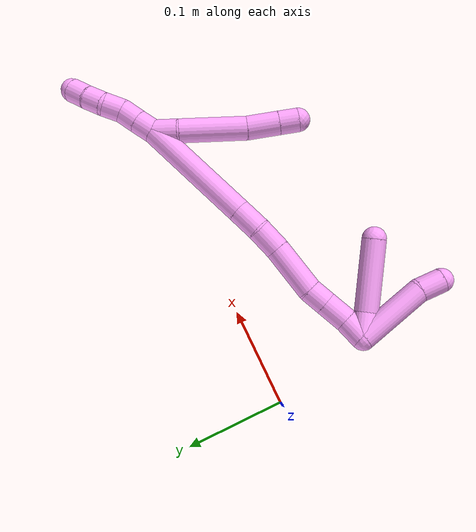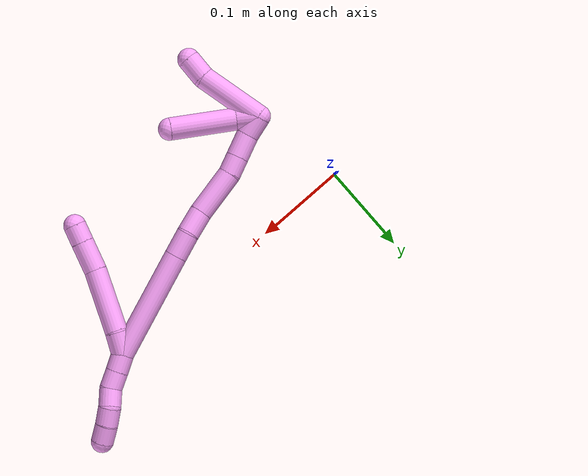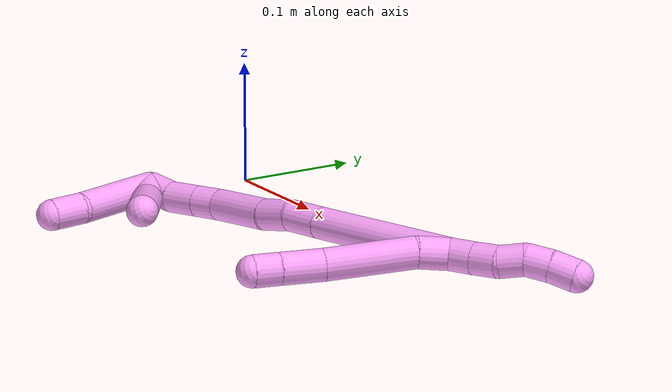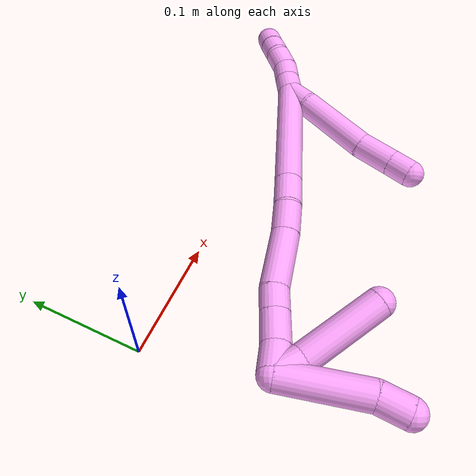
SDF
<sdf version="1.7">
 <world name="default">
  <model name="4">
   <static>0</static>
   <link name="4">
    <collision name="collision-cylinder-e_1_2_8">
     <pose>-0.005936 -0.008207 0.007788 0.811597 -0.483171 -0.210941</pose>
     <geometry><cylinder><radius>0.0125</radius><length>0.025554</length></cylinder></geometry>
     <surface>
      <friction><ode><mu>1.16</mu><mu2>1.16</mu2><slip1>0</slip1><slip2>0</slip2></ode></friction>
      <contact><ode><kp>1e+06</kp><kd>1</kd><max_vel>0</max_vel><min_depth>0.001</min_depth></ode></contact>
     </surface>
    </collision>
    <visual name="visual-cylinder-e_1_2_8">
     <pose>-0.005936 -0.008207 0.007788 0.811597 -0.483171 -0.210941</pose>
     <geometry><cylinder><radius>0.0125</radius><length>0.025554</length></cylinder></geometry>
     <material><ambient>1 0.65098 0.996078 1</ambient></material>
    </visual>
    <collision name="collision-cylinder-e_2_8_9">
     <pose>-0.0319 -0.033886 0.03866 0.647897 -0.605215 -0.208894</pose>
     <geometry><cylinder><radius>0.0125</radius><length>0.070404</length></cylinder></geometry>
     <surface>
      <friction><ode><mu>1.16</mu><mu2>1.16</mu2><slip1>0</slip1><slip2>0</slip2></ode></friction>
      <contact><ode><kp>1e+06</kp><kd>1</kd><max_vel>0</max_vel><min_depth>0.001</min_depth></ode></contact>
     </surface>
    </collision>
    <visual name="visual-cylinder-e_2_8_9">
     <pose>-0.0319 -0.033886 0.03866 0.647897 -0.605215 -0.208894</pose>
     <geometry><cylinder><radius>0.0125</radius><length>0.070404</length></cylinder></geometry>
     <material><ambient>1 0.65098 0.996078 1</ambient></material>
    </visual>
    <collision name="collision-cylinder-e_3_9_10">
     <pose>-0.062367 -0.06069 0.071111 0.783504 -0.668276 -0.28488</pose>
     <geometry><cylinder><radius>0.0125</radius><length>0.033695</length></cylinder></geometry>
     <surface>
      <friction><ode><mu>1.16</mu><mu2>1.16</mu2><slip1>0</slip1><slip2>0</slip2></ode></friction>
      <contact><ode><kp>1e+06</kp><kd>1</kd><max_vel>0</max_vel><min_depth>0.001</min_depth></ode></contact>
     </surface>
    </collision>
    <visual name="visual-cylinder-e_3_9_10">
     <pose>-0.062367 -0.06069 0.071111 0.783504 -0.668276 -0.28488</pose>
     <geometry><cylinder><radius>0.0125</radius><length>0.033695</length></cylinder></geometry>
     <material><ambient>1 0.65098 0.996078 1</ambient></material>
    </visual>
    <collision name="collision-cylinder-e_4_10_6">
     <pose>-0.079113 -0.075629 0.086162 0.77857 -0.668574 -0.283051</pose>
     <geometry><cylinder><radius>0.0125</radius><length>0.020346</length></cylinder></geometry>
     <surface>
      <friction><ode><mu>1.16</mu><mu2>1.16</mu2><slip1>0</slip1><slip2>0</slip2></ode></friction>
      <contact><ode><kp>1e+06</kp><kd>1</kd><max_vel>0</max_vel><min_depth>0.001</min_depth></ode></contact>
     </surface>
    </collision>
    <visual name="visual-cylinder-e_4_10_6">
     <pose>-0.079113 -0.075629 0.086162 0.77857 -0.668574 -0.283051</pose>
     <geometry><cylinder><radius>0.0125</radius><length>0.020346</length></cylinder></geometry>
     <material><ambient>1 0.65098 0.996078 1</ambient></material>
    </visual>
    <collision name="collision-cylinder-e_1_2_11">
     <pose>-0.000494 0.004959 -0.00867 -2.62204 -0.049377 0.185287</pose>
     <geometry><cylinder><radius>0.0125</radius><length>0.02</length></cylinder></geometry>
     <surface>
      <friction><ode><mu>1.16</mu><mu2>1.16</mu2><slip1>0</slip1><slip2>0</slip2></ode></friction>
      <contact><ode><kp>1e+06</kp><kd>1</kd><max_vel>0</max_vel><min_depth>0.001</min_depth></ode></contact>
     </surface>
    </collision>
    <visual name="visual-cylinder-e_1_2_11">
     <pose>-0.000494 0.004959 -0.00867 -2.62204 -0.049377 0.185287</pose>
     <geometry><cylinder><radius>0.0125</radius><length>0.02</length></cylinder></geometry>
     <material><ambient>1 0.65098 0.996078 1</ambient></material>
    </visual>
    <collision name="collision-cylinder-e_2_11_12">
     <pose>-0.001551 0.014519 -0.0262 -2.6626 -0.056402 0.230025</pose>
     <geometry><cylinder><radius>0.0125</radius><length>0.02</length></cylinder></geometry>
     <surface>
      <friction><ode><mu>1.16</mu><mu2>1.16</mu2><slip1>0</slip1><slip2>0</slip2></ode></friction>
      <contact><ode><kp>1e+06</kp><kd>1</kd><max_vel>0</max_vel><min_depth>0.001</min_depth></ode></contact>
     </surface>
    </collision>
    <visual name="visual-cylinder-e_2_11_12">
     <pose>-0.001551 0.014519 -0.0262 -2.6626 -0.056402 0.230025</pose>
     <geometry><cylinder><radius>0.0125</radius><length>0.02</length></cylinder></geometry>
     <material><ambient>1 0.65098 0.996078 1</ambient></material>
    </visual>
    <collision name="collision-cylinder-e_3_12_13">
     <pose>0.000537 0.023224 -0.043786 -2.70205 0.268417 -1.08736</pose>
     <geometry><cylinder><radius>0.0125</radius><length>0.02</length></cylinder></geometry>
     <surface>
      <friction><ode><mu>1.16</mu><mu2>1.16</mu2><slip1>0</slip1><slip2>0</slip2></ode></friction>
      <contact><ode><kp>1e+06</kp><kd>1</kd><max_vel>0</max_vel><min_depth>0.001</min_depth></ode></contact>
     </surface>
    </collision>
    <visual name="visual-cylinder-e_3_12_13">
     <pose>0.000537 0.023224 -0.043786 -2.70205 0.268417 -1.08736</pose>
     <geometry><cylinder><radius>0.0125</radius><length>0.02</length></cylinder></geometry>
     <material><ambient>1 0.65098 0.996078 1</ambient></material>
    </visual>
    <collision name="collision-cylinder-e_4_13_14">
     <pose>0.003554 0.033737 -0.060178 -2.44515 0.036478 -0.100414</pose>
     <geometry><cylinder><radius>0.0125</radius><length>0.02</length></cylinder></geometry>
     <surface>
      <friction><ode><mu>1.16</mu><mu2>1.16</mu2><slip1>0</slip1><slip2>0</slip2></ode></friction>
      <contact><ode><kp>1e+06</kp><kd>1</kd><max_vel>0</max_vel><min_depth>0.001</min_depth></ode></contact>
     </surface>
    </collision>
    <visual name="visual-cylinder-e_4_13_14">
     <pose>0.003554 0.033737 -0.060178 -2.44515 0.036478 -0.100414</pose>
     <geometry><cylinder><radius>0.0125</radius><length>0.02</length></cylinder></geometry>
     <material><ambient>1 0.65098 0.996078 1</ambient></material>
    </visual>
    <collision name="collision-cylinder-e_5_14_5">
     <pose>0.003297 0.047026 -0.075076 -2.38124 -0.062247 0.155504</pose>
     <geometry><cylinder><radius>0.0125</radius><length>0.02</length></cylinder></geometry>
     <surface>
      <friction><ode><mu>1.16</mu><mu2>1.16</mu2><slip1>0</slip1><slip2>0</slip2></ode></friction>
      <contact><ode><kp>1e+06</kp><kd>1</kd><max_vel>0</max_vel><min_depth>0.001</min_depth></ode></contact>
     </surface>
    </collision>
    <visual name="visual-cylinder-e_5_14_5">
     <pose>0.003297 0.047026 -0.075076 -2.38124 -0.062247 0.155504</pose>
     <geometry><cylinder><radius>0.0125</radius><length>0.02</length></cylinder></geometry>
     <material><ambient>1 0.65098 0.996078 1</ambient></material>
    </visual>
    <collision name="collision-cylinder-e_1_2_15">
     <pose>0.012645 -0.026267 0.053202 0.458611 0.209983 0.049183</pose>
     <geometry><cylinder><radius>0.0125</radius><length>0.121332</length></cylinder></geometry>
     <surface>
      <friction><ode><mu>1.16</mu><mu2>1.16</mu2><slip1>0</slip1><slip2>0</slip2></ode></friction>
      <contact><ode><kp>1e+06</kp><kd>1</kd><max_vel>0</max_vel><min_depth>0.001</min_depth></ode></contact>
     </surface>
    </collision>
    <visual name="visual-cylinder-e_1_2_15">
     <pose>0.012645 -0.026267 0.053202 0.458611 0.209983 0.049183</pose>
     <geometry><cylinder><radius>0.0125</radius><length>0.121332</length></cylinder></geometry>
     <material><ambient>1 0.65098 0.996078 1</ambient></material>
    </visual>
    <collision name="collision-cylinder-e_2_15_16">
     <pose>0.028288 -0.058603 0.118453 0.466611 0.218592 0.052141</pose>
     <geometry><cylinder><radius>0.0125</radius><length>0.027639</length></cylinder></geometry>
     <surface>
      <friction><ode><mu>1.16</mu><mu2>1.16</mu2><slip1>0</slip1><slip2>0</slip2></ode></friction>
      <contact><ode><kp>1e+06</kp><kd>1</kd><max_vel>0</max_vel><min_depth>0.001</min_depth></ode></contact>
     </surface>
    </collision>
    <visual name="visual-cylinder-e_2_15_16">
     <pose>0.028288 -0.058603 0.118453 0.466611 0.218592 0.052141</pose>
     <geometry><cylinder><radius>0.0125</radius><length>0.027639</length></cylinder></geometry>
     <material><ambient>1 0.65098 0.996078 1</ambient></material>
    </visual>
    <collision name="collision-cylinder-e_3_16_17">
     <pose>0.033783 -0.06823 0.143315 0.270851 0.185681 0.025372</pose>
     <geometry><cylinder><radius>0.0125</radius><length>0.027063</length></cylinder></geometry>
     <surface>
      <friction><ode><mu>1.16</mu><mu2>1.16</mu2><slip1>0</slip1><slip2>0</slip2></ode></friction>
      <contact><ode><kp>1e+06</kp><kd>1</kd><max_vel>0</max_vel><min_depth>0.001</min_depth></ode></contact>
     </surface>
    </collision>
    <visual name="visual-cylinder-e_3_16_17">
     <pose>0.033783 -0.06823 0.143315 0.270851 0.185681 0.025372</pose>
     <geometry><cylinder><radius>0.0125</radius><length>0.027063</length></cylinder></geometry>
     <material><ambient>1 0.65098 0.996078 1</ambient></material>
    </visual>
    <collision name="collision-cylinder-e_4_17_18">
     <pose>0.044531 -0.079897 0.179648 0.332023 0.320217 0.054103</pose>
     <geometry><cylinder><radius>0.0125</radius><length>0.052419</length></cylinder></geometry>
     <surface>
      <friction><ode><mu>1.16</mu><mu2>1.16</mu2><slip1>0</slip1><slip2>0</slip2></ode></friction>
      <contact><ode><kp>1e+06</kp><kd>1</kd><max_vel>0</max_vel><min_depth>0.001</min_depth></ode></contact>
     </surface>
    </collision>
    <visual name="visual-cylinder-e_4_17_18">
     <pose>0.044531 -0.079897 0.179648 0.332023 0.320217 0.054103</pose>
     <geometry><cylinder><radius>0.0125</radius><length>0.052419</length></cylinder></geometry>
     <material><ambient>1 0.65098 0.996078 1</ambient></material>
    </visual>
    <collision name="collision-cylinder-e_5_18_19">
     <pose>0.054211 -0.09235 0.212444 0.4379 0.138761 0.030924</pose>
     <geometry><cylinder><radius>0.0125</radius><length>0.020689</length></cylinder></geometry>
     <surface>
      <friction><ode><mu>1.16</mu><mu2>1.16</mu2><slip1>0</slip1><slip2>0</slip2></ode></friction>
      <contact><ode><kp>1e+06</kp><kd>1</kd><max_vel>0</max_vel><min_depth>0.001</min_depth></ode></contact>
     </surface>
    </collision>
    <visual name="visual-cylinder-e_5_18_19">
     <pose>0.054211 -0.09235 0.212444 0.4379 0.138761 0.030924</pose>
     <geometry><cylinder><radius>0.0125</radius><length>0.020689</length></cylinder></geometry>
     <material><ambient>1 0.65098 0.996078 1</ambient></material>
    </visual>
    <collision name="collision-cylinder-e_6_19_20">
     <pose>0.057481 -0.102346 0.233724 0.440138 0.137708 0.030851</pose>
     <geometry><cylinder><radius>0.0125</radius><length>0.026784</length></cylinder></geometry>
     <surface>
      <friction><ode><mu>1.16</mu><mu2>1.16</mu2><slip1>0</slip1><slip2>0</slip2></ode></friction>
      <contact><ode><kp>1e+06</kp><kd>1</kd><max_vel>0</max_vel><min_depth>0.001</min_depth></ode></contact>
     </surface>
    </collision>
    <visual name="visual-cylinder-e_6_19_20">
     <pose>0.057481 -0.102346 0.233724 0.440138 0.137708 0.030851</pose>
     <geometry><cylinder><radius>0.0125</radius><length>0.026784</length></cylinder></geometry>
     <material><ambient>1 0.65098 0.996078 1</ambient></material>
    </visual>
    <collision name="collision-cylinder-e_7_20_1">
     <pose>0.063125 -0.114021 0.255427 0.555535 0.321673 0.092455</pose>
     <geometry><cylinder><radius>0.0125</radius><length>0.024075</length></cylinder></geometry>
     <surface>
      <friction><ode><mu>1.16</mu><mu2>1.16</mu2><slip1>0</slip1><slip2>0</slip2></ode></friction>
      <contact><ode><kp>1e+06</kp><kd>1</kd><max_vel>0</max_vel><min_depth>0.001</min_depth></ode></contact>
     </surface>
    </collision>
    <visual name="visual-cylinder-e_7_20_1">
     <pose>0.063125 -0.114021 0.255427 0.555535 0.321673 0.092455</pose>
     <geometry><cylinder><radius>0.0125</radius><length>0.024075</length></cylinder></geometry>
     <material><ambient>1 0.65098 0.996078 1</ambient></material>
    </visual>
    <collision name="collision-cylinder-e_1_1_21">
     <pose>0.033499 -0.135267 0.270429 1.23585 -1.12153 -0.839684</pose>
     <geometry><cylinder><radius>0.0125</radius><length>0.074229</length></cylinder></geometry>
     <surface>
      <friction><ode><mu>1.16</mu><mu2>1.16</mu2><slip1>0</slip1><slip2>0</slip2></ode></friction>
      <contact><ode><kp>1e+06</kp><kd>1</kd><max_vel>0</max_vel><min_depth>0.001</min_depth></ode></contact>
     </surface>
    </collision>
    <visual name="visual-cylinder-e_1_1_21">
     <pose>0.033499 -0.135267 0.270429 1.23585 -1.12153 -0.839684</pose>
     <geometry><cylinder><radius>0.0125</radius><length>0.074229</length></cylinder></geometry>
     <material><ambient>1 0.65098 0.996078 1</ambient></material>
    </visual>
    <collision name="collision-cylinder-e_2_21_4">
     <pose>-0.010212 -0.156415 0.280754 0.867234 -0.923569 -0.452946</pose>
     <geometry><cylinder><radius>0.0125</radius><length>0.025771</length></cylinder></geometry>
     <surface>
      <friction><ode><mu>1.16</mu><mu2>1.16</mu2><slip1>0</slip1><slip2>0</slip2></ode></friction>
      <contact><ode><kp>1e+06</kp><kd>1</kd><max_vel>0</max_vel><min_depth>0.001</min_depth></ode></contact>
     </surface>
    </collision>
    <visual name="visual-cylinder-e_2_21_4">
     <pose>-0.010212 -0.156415 0.280754 0.867234 -0.923569 -0.452946</pose>
     <geometry><cylinder><radius>0.0125</radius><length>0.025771</length></cylinder></geometry>
     <material><ambient>1 0.65098 0.996078 1</ambient></material>
    </visual>
    <collision name="collision-cylinder-e_1_1_22">
     <pose>0.055305 -0.119928 0.259735 -3.12018 -1.13623 3.10805</pose>
     <geometry><cylinder><radius>0.0125</radius><length>0.025634</length></cylinder></geometry>
     <surface>
      <friction><ode><mu>1.16</mu><mu2>1.16</mu2><slip1>0</slip1><slip2>0</slip2></ode></friction>
      <contact><ode><kp>1e+06</kp><kd>1</kd><max_vel>0</max_vel><min_depth>0.001</min_depth></ode></contact>
     </surface>
    </collision>
    <visual name="visual-cylinder-e_1_1_22">
     <pose>0.055305 -0.119928 0.259735 -3.12018 -1.13623 3.10805</pose>
     <geometry><cylinder><radius>0.0125</radius><length>0.025634</length></cylinder></geometry>
     <material><ambient>1 0.65098 0.996078 1</ambient></material>
    </visual>
    <collision name="collision-cylinder-e_2_22_3">
     <pose>0.014348 -0.126695 0.232548 2.83567 -0.908909 -2.53027</pose>
     <geometry><cylinder><radius>0.0125</radius><length>0.074366</length></cylinder></geometry>
     <surface>
      <friction><ode><mu>1.16</mu><mu2>1.16</mu2><slip1>0</slip1><slip2>0</slip2></ode></friction>
      <contact><ode><kp>1e+06</kp><kd>1</kd><max_vel>0</max_vel><min_depth>0.001</min_depth></ode></contact>
     </surface>
    </collision>
    <visual name="visual-cylinder-e_2_22_3">
     <pose>0.014348 -0.126695 0.232548 2.83567 -0.908909 -2.53027</pose>
     <geometry><cylinder><radius>0.0125</radius><length>0.074366</length></cylinder></geometry>
     <material><ambient>1 0.65098 0.996078 1</ambient></material>
    </visual>
    <collision name="collision-sphere-3">
     <pose>-0.014983 -0.133578 0.210757 0 -0 0</pose>
     <geometry><sphere><radius>0.0125</radius></sphere></geometry>
     <surface>
      <friction><ode><mu>1.16</mu><mu2>1.16</mu2><slip1>0</slip1><slip2>0</slip2></ode></friction>
      <contact><ode><kp>1e+06</kp><kd>1</kd><max_vel>0</max_vel><min_depth>0.001</min_depth></ode></contact>
     </surface>
    </collision>
    <visual name="visual-sphere-3">
     <pose>-0.014983 -0.133578 0.210757 0 -0 0</pose>
     <geometry><sphere><radius>0.0125</radius></sphere></geometry>
     <material><ambient>1 0.65098 0.996078 1</ambient></material>
    </visual>
    <collision name="collision-sphere-22">
     <pose>0.043679 -0.119813 0.25434 0 -0 0</pose>
     <geometry><sphere><radius>0.0125</radius></sphere></geometry>
     <surface>
      <friction><ode><mu>1.16</mu><mu2>1.16</mu2><slip1>0</slip1><slip2>0</slip2></ode></friction>
      <contact><ode><kp>1e+06</kp><kd>1</kd><max_vel>0</max_vel><min_depth>0.001</min_depth></ode></contact>
     </surface>
    </collision>
    <visual name="visual-sphere-22">
     <pose>0.043679 -0.119813 0.25434 0 -0 0</pose>
     <geometry><sphere><radius>0.0125</radius></sphere></geometry>
     <material><ambient>1 0.65098 0.996078 1</ambient></material>
    </visual>
    <collision name="collision-sphere-4">
     <pose>-0.020492 -0.16234 0.28578 0 -0 0</pose>
     <geometry><sphere><radius>0.0125</radius></sphere></geometry>
     <surface>
      <friction><ode><mu>1.16</mu><mu2>1.16</mu2><slip1>0</slip1><slip2>0</slip2></ode></friction>
      <contact><ode><kp>1e+06</kp><kd>1</kd><max_vel>0</max_vel><min_depth>0.001</min_depth></ode></contact>
     </surface>
    </collision>
    <visual name="visual-sphere-4">
     <pose>-0.020492 -0.16234 0.28578 0 -0 0</pose>
     <geometry><sphere><radius>0.0125</radius></sphere></geometry>
     <material><ambient>1 0.65098 0.996078 1</ambient></material>
    </visual>
    <collision name="collision-sphere-21">
     <pose>6.8e-05 -0.15049 0.275727 0 -0 0</pose>
     <geometry><sphere><radius>0.0125</radius></sphere></geometry>
     <surface>
      <friction><ode><mu>1.16</mu><mu2>1.16</mu2><slip1>0</slip1><slip2>0</slip2></ode></friction>
      <contact><ode><kp>1e+06</kp><kd>1</kd><max_vel>0</max_vel><min_depth>0.001</min_depth></ode></contact>
     </surface>
    </collision>
    <visual name="visual-sphere-21">
     <pose>6.8e-05 -0.15049 0.275727 0 -0 0</pose>
     <geometry><sphere><radius>0.0125</radius></sphere></geometry>
     <material><ambient>1 0.65098 0.996078 1</ambient></material>
    </visual>
    <collision name="collision-sphere-1">
     <pose>0.06693 -0.120044 0.26513 0 -0 0</pose>
     <geometry><sphere><radius>0.0125</radius></sphere></geometry>
     <surface>
      <friction><ode><mu>1.16</mu><mu2>1.16</mu2><slip1>0</slip1><slip2>0</slip2></ode></friction>
      <contact><ode><kp>1e+06</kp><kd>1</kd><max_vel>0</max_vel><min_depth>0.001</min_depth></ode></contact>
     </surface>
    </collision>
    <visual name="visual-sphere-1">
     <pose>0.06693 -0.120044 0.26513 0 -0 0</pose>
     <geometry><sphere><radius>0.0125</radius></sphere></geometry>
     <material><ambient>1 0.65098 0.996078 1</ambient></material>
    </visual>
    <collision name="collision-sphere-11">
     <pose>-0.000987 0.009918 -0.01734 0 -0 0</pose>
     <geometry><sphere><radius>0.0125</radius></sphere></geometry>
     <surface>
      <friction><ode><mu>1.16</mu><mu2>1.16</mu2><slip1>0</slip1><slip2>0</slip2></ode></friction>
      <contact><ode><kp>1e+06</kp><kd>1</kd><max_vel>0</max_vel><min_depth>0.001</min_depth></ode></contact>
     </surface>
    </collision>
    <visual name="visual-sphere-11">
     <pose>-0.000987 0.009918 -0.01734 0 -0 0</pose>
     <geometry><sphere><radius>0.0125</radius></sphere></geometry>
     <material><ambient>1 0.65098 0.996078 1</ambient></material>
    </visual>
    <collision name="collision-sphere-6">
     <pose>-0.085419 -0.081235 0.091845 0 -0 0</pose>
     <geometry><sphere><radius>0.0125</radius></sphere></geometry>
     <surface>
      <friction><ode><mu>1.16</mu><mu2>1.16</mu2><slip1>0</slip1><slip2>0</slip2></ode></friction>
      <contact><ode><kp>1e+06</kp><kd>1</kd><max_vel>0</max_vel><min_depth>0.001</min_depth></ode></contact>
     </surface>
    </collision>
    <visual name="visual-sphere-6">
     <pose>-0.085419 -0.081235 0.091845 0 -0 0</pose>
     <geometry><sphere><radius>0.0125</radius></sphere></geometry>
     <material><ambient>1 0.65098 0.996078 1</ambient></material>
    </visual>
    <collision name="collision-sphere-10">
     <pose>-0.072807 -0.070023 0.080479 0 -0 0</pose>
     <geometry><sphere><radius>0.0125</radius></sphere></geometry>
     <surface>
      <friction><ode><mu>1.16</mu><mu2>1.16</mu2><slip1>0</slip1><slip2>0</slip2></ode></friction>
      <contact><ode><kp>1e+06</kp><kd>1</kd><max_vel>0</max_vel><min_depth>0.001</min_depth></ode></contact>
     </surface>
    </collision>
    <visual name="visual-sphere-10">
     <pose>-0.072807 -0.070023 0.080479 0 -0 0</pose>
     <geometry><sphere><radius>0.0125</radius></sphere></geometry>
     <material><ambient>1 0.65098 0.996078 1</ambient></material>
    </visual>
    <collision name="collision-sphere-9">
     <pose>-0.051928 -0.051358 0.061743 0 -0 0</pose>
     <geometry><sphere><radius>0.0125</radius></sphere></geometry>
     <surface>
      <friction><ode><mu>1.16</mu><mu2>1.16</mu2><slip1>0</slip1><slip2>0</slip2></ode></friction>
      <contact><ode><kp>1e+06</kp><kd>1</kd><max_vel>0</max_vel><min_depth>0.001</min_depth></ode></contact>
     </surface>
    </collision>
    <visual name="visual-sphere-9">
     <pose>-0.051928 -0.051358 0.061743 0 -0 0</pose>
     <geometry><sphere><radius>0.0125</radius></sphere></geometry>
     <material><ambient>1 0.65098 0.996078 1</ambient></material>
    </visual>
    <collision name="collision-sphere-2">
     <geometry><sphere><radius>0.0125</radius></sphere></geometry>
     <surface>
      <friction><ode><mu>1.16</mu><mu2>1.16</mu2><slip1>0</slip1><slip2>0</slip2></ode></friction>
      <contact><ode><kp>1e+06</kp><kd>1</kd><max_vel>0</max_vel><min_depth>0.001</min_depth></ode></contact>
     </surface>
    </collision>
    <visual name="visual-sphere-2">
     <geometry><sphere><radius>0.0125</radius></sphere></geometry>
     <material><ambient>1 0.65098 0.996078 1</ambient></material>
    </visual>
    <collision name="collision-sphere-19">
     <pose>0.055642 -0.096694 0.221723 0 -0 0</pose>
     <geometry><sphere><radius>0.0125</radius></sphere></geometry>
     <surface>
      <friction><ode><mu>1.16</mu><mu2>1.16</mu2><slip1>0</slip1><slip2>0</slip2></ode></friction>
      <contact><ode><kp>1e+06</kp><kd>1</kd><max_vel>0</max_vel><min_depth>0.001</min_depth></ode></contact>
     </surface>
    </collision>
    <visual name="visual-sphere-19">
     <pose>0.055642 -0.096694 0.221723 0 -0 0</pose>
     <geometry><sphere><radius>0.0125</radius></sphere></geometry>
     <material><ambient>1 0.65098 0.996078 1</ambient></material>
    </visual>
    <collision name="collision-sphere-8">
     <pose>-0.011872 -0.016415 0.015577 0 -0 0</pose>
     <geometry><sphere><radius>0.0125</radius></sphere></geometry>
     <surface>
      <friction><ode><mu>1.16</mu><mu2>1.16</mu2><slip1>0</slip1><slip2>0</slip2></ode></friction>
      <contact><ode><kp>1e+06</kp><kd>1</kd><max_vel>0</max_vel><min_depth>0.001</min_depth></ode></contact>
     </surface>
    </collision>
    <visual name="visual-sphere-8">
     <pose>-0.011872 -0.016415 0.015577 0 -0 0</pose>
     <geometry><sphere><radius>0.0125</radius></sphere></geometry>
     <material><ambient>1 0.65098 0.996078 1</ambient></material>
    </visual>
    <collision name="collision-sphere-12">
     <pose>-0.002115 0.019121 -0.035061 0 -0 0</pose>
     <geometry><sphere><radius>0.0125</radius></sphere></geometry>
     <surface>
      <friction><ode><mu>1.16</mu><mu2>1.16</mu2><slip1>0</slip1><slip2>0</slip2></ode></friction>
      <contact><ode><kp>1e+06</kp><kd>1</kd><max_vel>0</max_vel><min_depth>0.001</min_depth></ode></contact>
     </surface>
    </collision>
    <visual name="visual-sphere-12">
     <pose>-0.002115 0.019121 -0.035061 0 -0 0</pose>
     <geometry><sphere><radius>0.0125</radius></sphere></geometry>
     <material><ambient>1 0.65098 0.996078 1</ambient></material>
    </visual>
    <collision name="collision-sphere-13">
     <pose>0.00319 0.027327 -0.052511 0 -0 0</pose>
     <geometry><sphere><radius>0.0125</radius></sphere></geometry>
     <surface>
      <friction><ode><mu>1.16</mu><mu2>1.16</mu2><slip1>0</slip1><slip2>0</slip2></ode></friction>
      <contact><ode><kp>1e+06</kp><kd>1</kd><max_vel>0</max_vel><min_depth>0.001</min_depth></ode></contact>
     </surface>
    </collision>
    <visual name="visual-sphere-13">
     <pose>0.00319 0.027327 -0.052511 0 -0 0</pose>
     <geometry><sphere><radius>0.0125</radius></sphere></geometry>
     <material><ambient>1 0.65098 0.996078 1</ambient></material>
    </visual>
    <collision name="collision-sphere-14">
     <pose>0.003919 0.040148 -0.067844 0 -0 0</pose>
     <geometry><sphere><radius>0.0125</radius></sphere></geometry>
     <surface>
      <friction><ode><mu>1.16</mu><mu2>1.16</mu2><slip1>0</slip1><slip2>0</slip2></ode></friction>
      <contact><ode><kp>1e+06</kp><kd>1</kd><max_vel>0</max_vel><min_depth>0.001</min_depth></ode></contact>
     </surface>
    </collision>
    <visual name="visual-sphere-14">
     <pose>0.003919 0.040148 -0.067844 0 -0 0</pose>
     <geometry><sphere><radius>0.0125</radius></sphere></geometry>
     <material><ambient>1 0.65098 0.996078 1</ambient></material>
    </visual>
    <collision name="collision-sphere-5">
     <pose>0.002675 0.053905 -0.082308 0 -0 0</pose>
     <geometry><sphere><radius>0.0125</radius></sphere></geometry>
     <surface>
      <friction><ode><mu>1.16</mu><mu2>1.16</mu2><slip1>0</slip1><slip2>0</slip2></ode></friction>
      <contact><ode><kp>1e+06</kp><kd>1</kd><max_vel>0</max_vel><min_depth>0.001</min_depth></ode></contact>
     </surface>
    </collision>
    <visual name="visual-sphere-5">
     <pose>0.002675 0.053905 -0.082308 0 -0 0</pose>
     <geometry><sphere><radius>0.0125</radius></sphere></geometry>
     <material><ambient>1 0.65098 0.996078 1</ambient></material>
    </visual>
    <collision name="collision-sphere-15">
     <pose>0.025291 -0.052534 0.106405 0 -0 0</pose>
     <geometry><sphere><radius>0.0125</radius></sphere></geometry>
     <surface>
      <friction><ode><mu>1.16</mu><mu2>1.16</mu2><slip1>0</slip1><slip2>0</slip2></ode></friction>
      <contact><ode><kp>1e+06</kp><kd>1</kd><max_vel>0</max_vel><min_depth>0.001</min_depth></ode></contact>
     </surface>
    </collision>
    <visual name="visual-sphere-15">
     <pose>0.025291 -0.052534 0.106405 0 -0 0</pose>
     <geometry><sphere><radius>0.0125</radius></sphere></geometry>
     <material><ambient>1 0.65098 0.996078 1</ambient></material>
    </visual>
    <collision name="collision-sphere-16">
     <pose>0.031284 -0.064672 0.130501 0 -0 0</pose>
     <geometry><sphere><radius>0.0125</radius></sphere></geometry>
     <surface>
      <friction><ode><mu>1.16</mu><mu2>1.16</mu2><slip1>0</slip1><slip2>0</slip2></ode></friction>
      <contact><ode><kp>1e+06</kp><kd>1</kd><max_vel>0</max_vel><min_depth>0.001</min_depth></ode></contact>
     </surface>
    </collision>
    <visual name="visual-sphere-16">
     <pose>0.031284 -0.064672 0.130501 0 -0 0</pose>
     <geometry><sphere><radius>0.0125</radius></sphere></geometry>
     <material><ambient>1 0.65098 0.996078 1</ambient></material>
    </visual>
    <collision name="collision-sphere-17">
     <pose>0.036281 -0.071788 0.156129 0 -0 0</pose>
     <geometry><sphere><radius>0.0125</radius></sphere></geometry>
     <surface>
      <friction><ode><mu>1.16</mu><mu2>1.16</mu2><slip1>0</slip1><slip2>0</slip2></ode></friction>
      <contact><ode><kp>1e+06</kp><kd>1</kd><max_vel>0</max_vel><min_depth>0.001</min_depth></ode></contact>
     </surface>
    </collision>
    <visual name="visual-sphere-17">
     <pose>0.036281 -0.071788 0.156129 0 -0 0</pose>
     <geometry><sphere><radius>0.0125</radius></sphere></geometry>
     <material><ambient>1 0.65098 0.996078 1</ambient></material>
    </visual>
    <collision name="collision-sphere-18">
     <pose>0.052781 -0.088006 0.203166 0 -0 0</pose>
     <geometry><sphere><radius>0.0125</radius></sphere></geometry>
     <surface>
      <friction><ode><mu>1.16</mu><mu2>1.16</mu2><slip1>0</slip1><slip2>0</slip2></ode></friction>
      <contact><ode><kp>1e+06</kp><kd>1</kd><max_vel>0</max_vel><min_depth>0.001</min_depth></ode></contact>
     </surface>
    </collision>
    <visual name="visual-sphere-18">
     <pose>0.052781 -0.088006 0.203166 0 -0 0</pose>
     <geometry><sphere><radius>0.0125</radius></sphere></geometry>
     <material><ambient>1 0.65098 0.996078 1</ambient></material>
    </visual>
    <collision name="collision-sphere-20">
     <pose>0.059319 -0.107998 0.245725 0 -0 0</pose>
     <geometry><sphere><radius>0.0125</radius></sphere></geometry>
     <surface>
      <friction><ode><mu>1.16</mu><mu2>1.16</mu2><slip1>0</slip1><slip2>0</slip2></ode></friction>
      <contact><ode><kp>1e+06</kp><kd>1</kd><max_vel>0</max_vel><min_depth>0.001</min_depth></ode></contact>
     </surface>
    </collision>
    <visual name="visual-sphere-20">
     <pose>0.059319 -0.107998 0.245725 0 -0 0</pose>
     <geometry><sphere><radius>0.0125</radius></sphere></geometry>
     <material><ambient>1 0.65098 0.996078 1</ambient></material>
    </visual>
    <inertial>
     <pose>0.011269 -0.064688 0.125176 0 -0 0</pose>
     <mass>0.75</mass>
     <inertia>
      <ixx>0.000167</ixx>
      <ixy>0</ixy>
      <ixz>0</ixz>
      <iyy>0.00022</iyy>
      <iyz>0</iyz>
      <izz>0.000185</izz>
     </inertia>
    </inertial>
   </link>
   <pose>0.303245 -0.002925 0.01766 -2.08571 -0.332671 2.14948</pose>
  </model>
 </world>
</sdf>
